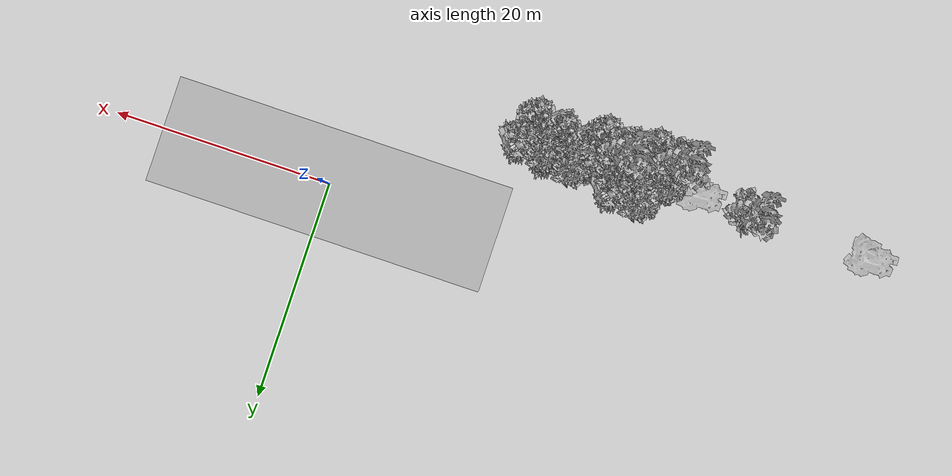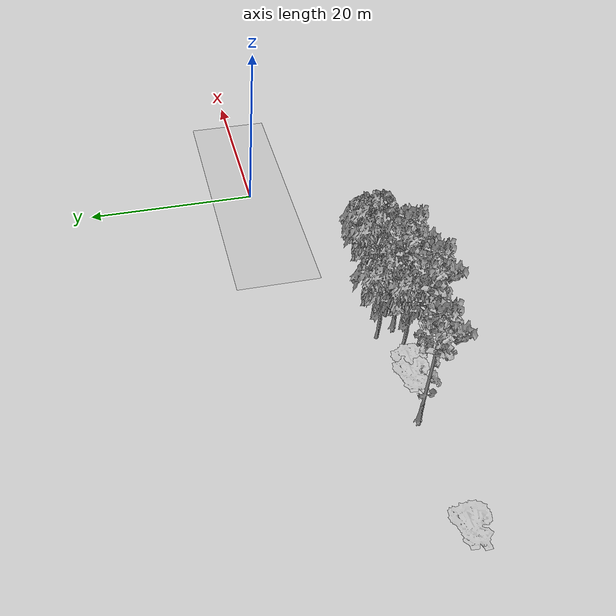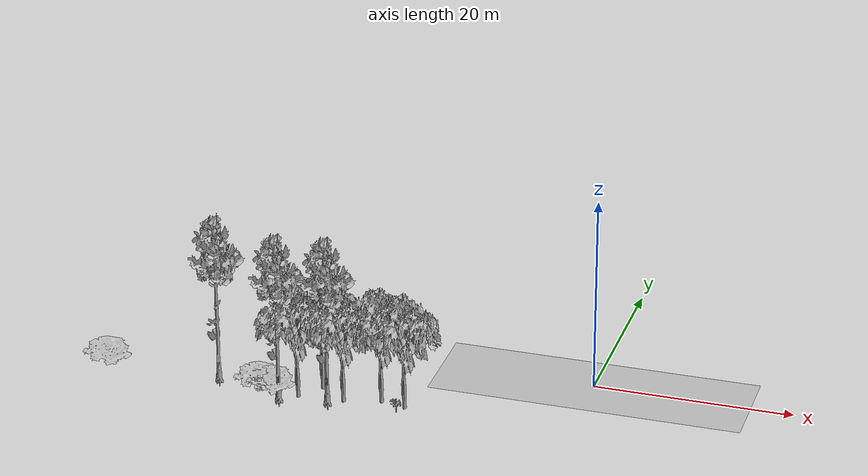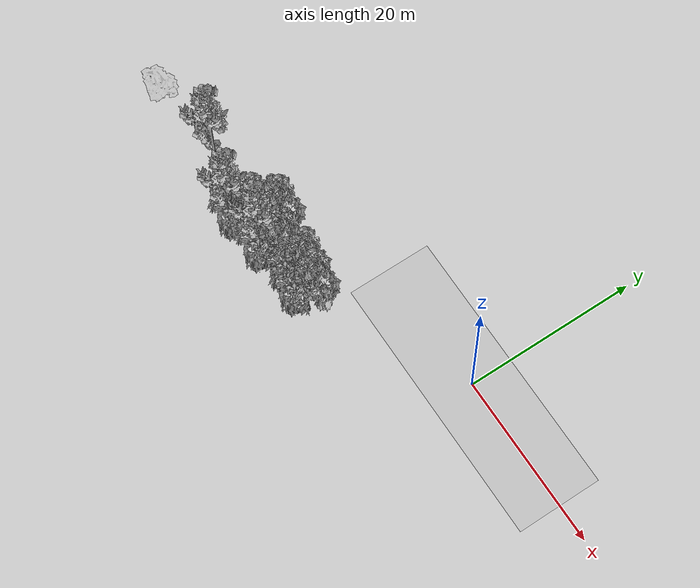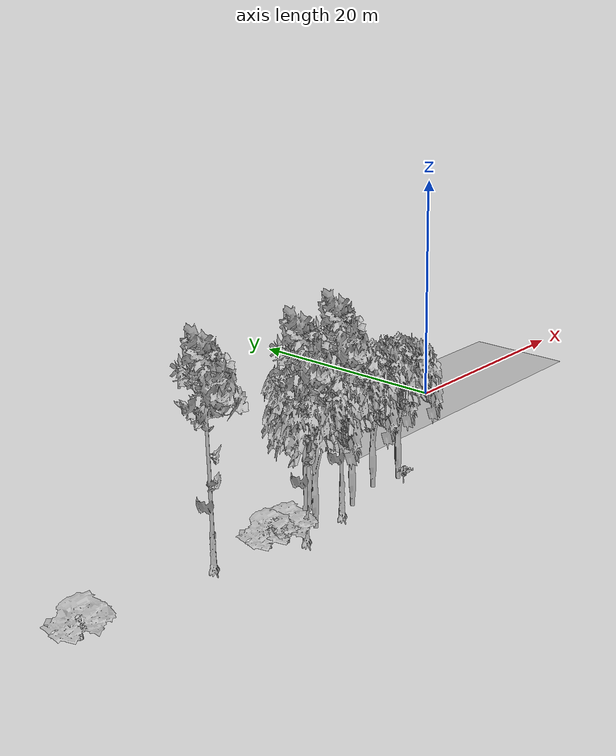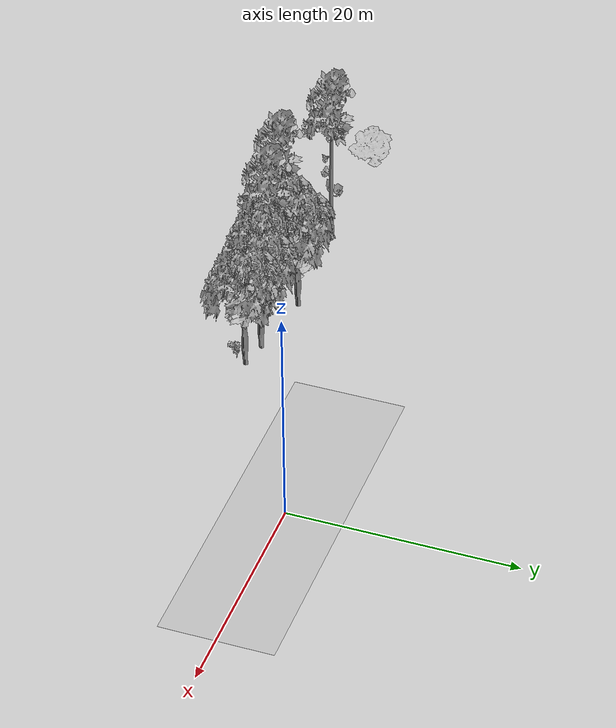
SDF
<sdf version="1.7">
 <world name="default">
  <model name="ground_plane">
   <static>1</static>
   <link name="link">
    <collision name="collision">
     <pose>-50 0 0 0 -0 0</pose>
     <geometry><plane><normal>0 0 1</normal><size>100 100</size></plane></geometry>
     <surface><contact><ode><min_depth>0.01</min_depth><max_vel>0</max_vel></ode></contact></surface>
    </collision>
    <visual name="grass">
     <cast_shadows>0</cast_shadows>
     <geometry>
      <mesh>
       <scale>0.5814285714285714 0.18142857142857144 0.1</scale>
       <uri>file://grass_plane/meshes/grass_plane.dae</uri>
      </mesh>
     </geometry>
    </visual>
   </link>
  </model>
  <model name="Tree 34">
   <static>1</static>
   <pose>-25.53793594194339 -8.206140084080793 0 1.57079 -0 0</pose>
   <link name="link">
    <collision name="collision">
     <geometry><mesh><scale>3.5 5 3.5</scale><uri>model://tree_2/meshes/tree_2.obj</uri></mesh></geometry>
    </collision>
    <visual name="visual">
     <geometry><mesh><scale>3.5 5 3.5</scale><uri>model://tree_2/meshes/tree_2.obj</uri></mesh></geometry>
    </visual>
   </link>
  </model>
  <model name="Tree 39">
   <static>1</static>
   <pose>-19.15492648574503 -9.195143101137447 0 1.57079 -0 0</pose>
   <link name="link">
    <collision name="collision">
     <geometry><mesh><scale>3.5 5 3.5</scale><uri>model://tree_2/meshes/tree_2.obj</uri></mesh></geometry>
    </collision>
    <visual name="visual">
     <geometry><mesh><scale>3.5 5 3.5</scale><uri>model://tree_2/meshes/tree_2.obj</uri></mesh></geometry>
    </visual>
   </link>
  </model>
  <model name="Tree 43">
   <static>1</static>
   <pose>-16.638413339635754 -9.709069907478137 0 1.57079 -0 0</pose>
   <link name="link">
    <collision name="collision">
     <geometry><mesh><scale>3.5 5 3.5</scale><uri>model://tree_2/meshes/tree_2.obj</uri></mesh></geometry>
    </collision>
    <visual name="visual">
     <geometry><mesh><scale>3.5 5 3.5</scale><uri>model://tree_2/meshes/tree_2.obj</uri></mesh></geometry>
    </visual>
   </link>
  </model>
  <model name="Tree 54">
   <static>1</static>
   <pose>-27.323822594343056 -10.47864401867945 0 1.57079 -0 0</pose>
   <link name="link">
    <collision name="collision">
     <geometry><mesh><scale>3.5 5 3.5</scale><uri>model://tree_2/meshes/tree_2.obj</uri></mesh></geometry>
    </collision>
    <visual name="visual">
     <geometry><mesh><scale>3.5 5 3.5</scale><uri>model://tree_2/meshes/tree_2.obj</uri></mesh></geometry>
    </visual>
   </link>
  </model>
  <model name="Tree 79">
   <static>1</static>
   <pose>-30.12128832511543 -10.389031362700871 0 1.57079 -0 0</pose>
   <link name="link">
    <collision name="collision">
     <geometry><mesh><scale>3 2 3</scale><uri>model://tree_3/meshes/tree_3.obj</uri></mesh></geometry>
    </collision>
    <visual name="visual">
     <geometry><mesh><scale>3 2 3</scale><uri>model://tree_3/meshes/tree_3.obj</uri></mesh></geometry>
    </visual>
   </link>
  </model>
  <model name="Tree 171">
   <static>1</static>
   <pose>-29.027275499252102 -11.156775323273001 0 1.57079 -0 0</pose>
   <link name="link">
    <collision name="collision">
     <geometry><mesh><scale>3.5 5 3.5</scale><uri>model://tree_9/meshes/tree_9.obj</uri></mesh></geometry>
    </collision>
    <visual name="visual">
     <geometry><mesh><scale>3.5 5 3.5</scale><uri>model://tree_9/meshes/tree_9.obj</uri></mesh></geometry>
    </visual>
   </link>
  </model>
  <model name="Tree 180">
   <static>1</static>
   <pose>-31.607748725162633 -10.034584419506336 0 1.57079 -0 0</pose>
   <link name="link">
    <collision name="collision">
     <geometry><mesh><scale>3 2 3</scale><uri>model://tree_3/meshes/tree_3.obj</uri></mesh></geometry>
    </collision>
    <visual name="visual">
     <geometry><mesh><scale>3 2 3</scale><uri>model://tree_3/meshes/tree_3.obj</uri></mesh></geometry>
    </visual>
   </link>
  </model>
  <model name="Tree 186">
   <static>1</static>
   <pose>-47.91619234217885 -9.388027468240931 0 1.57079 -0 0</pose>
   <link name="link">
    <collision name="collision">
     <geometry><mesh><scale>3 2 3</scale><uri>model://tree_3/meshes/tree_3.obj</uri></mesh></geometry>
    </collision>
    <visual name="visual">
     <geometry><mesh><scale>3 2 3</scale><uri>model://tree_3/meshes/tree_3.obj</uri></mesh></geometry>
    </visual>
   </link>
  </model>
  <model name="Tree 229">
   <static>1</static>
   <pose>-36.09426794986692 -8.941732456128218 0 1.57079 -0 0</pose>
   <link name="link">
    <collision name="collision">
     <geometry><mesh><scale>3.5 5 3.5</scale><uri>model://tree_9/meshes/tree_9.obj</uri></mesh></geometry>
    </collision>
    <visual name="visual">
     <geometry><mesh><scale>3.5 5 3.5</scale><uri>model://tree_9/meshes/tree_9.obj</uri></mesh></geometry>
    </visual>
   </link>
  </model>
  <model name="Tree 232">
   <static>1</static>
   <pose>-24.232731100192186 -10.427812317131783 0 1.57079 -0 0</pose>
   <link name="link">
    <collision name="collision">
     <geometry><mesh><scale>3.5 5 3.5</scale><uri>model://tree_9/meshes/tree_9.obj</uri></mesh></geometry>
    </collision>
    <visual name="visual">
     <geometry><mesh><scale>3.5 5 3.5</scale><uri>model://tree_9/meshes/tree_9.obj</uri></mesh></geometry>
    </visual>
   </link>
  </model>
  <model name="Tree 274">
   <static>1</static>
   <pose>-22.75415800794047 -10.144465523222792 0 1.57079 -0 0</pose>
   <link name="link">
    <collision name="collision">
     <geometry><mesh><scale>3.5 5 3.5</scale><uri>model://tree_2/meshes/tree_2.obj</uri></mesh></geometry>
    </collision>
    <visual name="visual">
     <geometry><mesh><scale>3.5 5 3.5</scale><uri>model://tree_2/meshes/tree_2.obj</uri></mesh></geometry>
    </visual>
   </link>
  </model>
  <model name="Bush 0">
   <static>1</static>
   <pose>-17.058026902154907 -10.671509179991784 0 1.57079 -0 0</pose>
   <link name="link">
    <collision name="collision">
     <geometry><mesh><scale>2 2 2</scale><uri>model://bush_5/meshes/bush_5.obj</uri></mesh></geometry>
     <surface><contact><collide_without_contact>false</collide_without_contact></contact></surface>
    </collision>
    <visual name="visual">
     <geometry><mesh><scale>2 2 2</scale><uri>model://bush_5/meshes/bush_5.obj</uri></mesh></geometry>
    </visual>
   </link>
  </model>
 </world>
</sdf>
